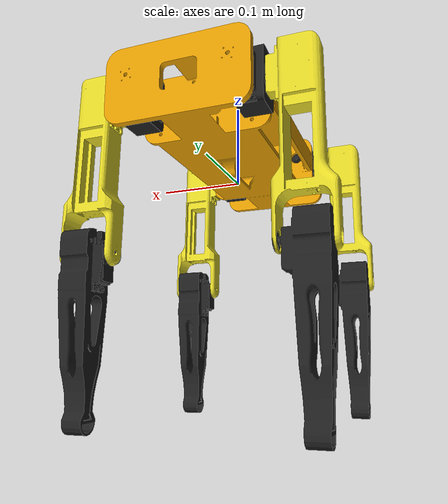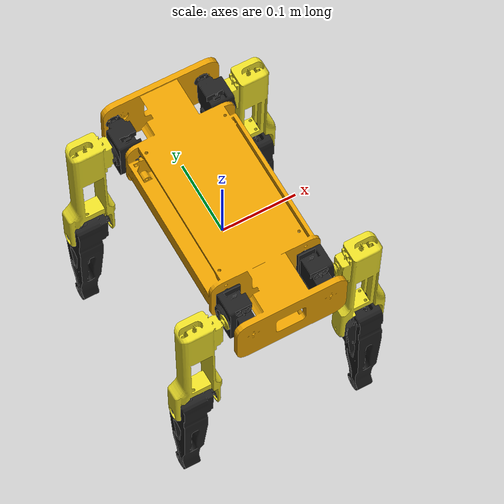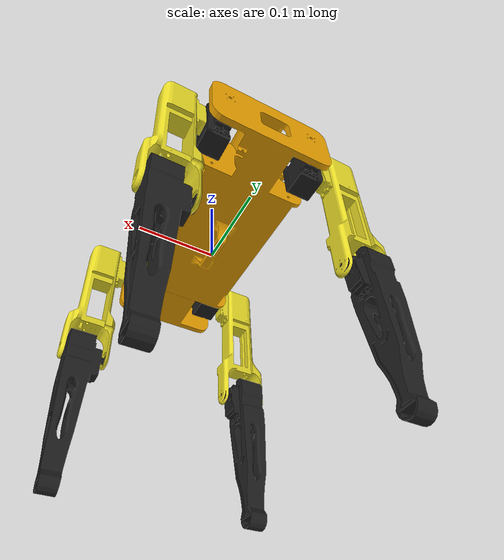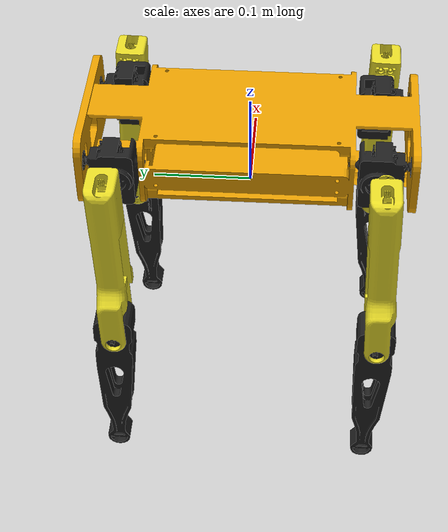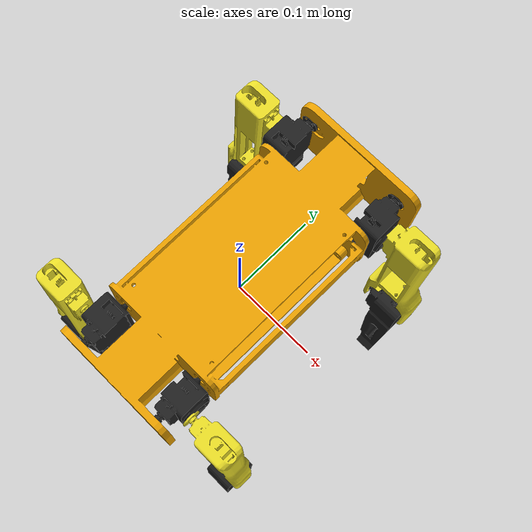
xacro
<?xml version="1.0"?>
<robot xmlns:xacro="http://www.ros.org/wiki/xacro">

  <!-- Base Link -->
  <link name="base_link">
    <inertial>
      <origin xyz="0.0339791631590955 0.00380847068418536 0.000887471069570558" rpy="0 0 0" />
      <mass value="0.640355588852556" />
      <inertia
        ixx="0.00190592102320622"
        ixy="-8.550078354135E-07"
        ixz="-1.1472674834457E-07"
        iyy="0.00102167555137532"
        iyz="-4.05723251345755E-06"
        izz="0.00137688759367021" />
    </inertial>

    <visual>
      <origin xyz="0 0 0.09" rpy="0 1.5708 0" />
      <geometry>
        <mesh filename="package://qu_description/meshes/base_link.stl" />
      </geometry>
    </visual>

    <collision>
      <origin xyz="0 0 0.09" rpy="0 1.5708 0" />
      <geometry>
        <mesh filename="package://qu_description/meshes/base_link.stl" />
      </geometry>
    </collision>
  </link>

  <!-- ========== FRONT RIGHT LEG ========== -->

  <!-- Hip Link FR -->
  <link name="hip_front_right">
    <inertial>
      <origin xyz="-0.0263049634741928 -0.00328314985238911 0.0104147139362361" rpy="0 0 0" />
      <mass value="0.0651782389959226" />
      <inertia
        ixx="2.05907584865794E-05"
        ixy="5.41740464590389E-07"
        ixz="3.22479705749544E-07"
        iyy="2.47921298483818E-05"
        iyz="-4.84168087573281E-07"
        izz="1.17472982428733E-05" />
    </inertial>

    <visual>
      <origin xyz="0.04 0.021 0.017" rpy="3.14 0 1.57" />
      <geometry>
        <mesh filename="package://qu_description/meshes/head_front_forward_right.stl" />
      </geometry>
      <material name="black"/>
    </visual>

    <collision>
      <origin xyz="0.04 0.021 0.017" rpy="3.14 0 1.57" />
      <geometry>
        <mesh filename="package://qu_description/meshes/head_front_forward_right.stl" />
      </geometry>
    </collision>
  </link>

  <!-- Hip Joint FR -->
  <joint name="hip_front_right" type="revolute">
    <origin xyz="-0.1 0.135 0.05" rpy="0 0 0"/>
    <parent link="base_link"/>
    <child link="hip_front_right"/>
    <axis xyz="0 -1 0"/>
    <limit lower="-1.57" upper="1.57" effort="10.0" velocity="6"/>
    <dynamics friction="0.1" damping="0.01"/>
  </joint>

  <!-- Upper Leg Link FR -->
  <link name="upper_leg_front_right">
    <inertial>
      <origin xyz="-0.0293472325462129 -0.0326544446067611 -0.0420830734856089" rpy="0 0 0" />
      <mass value="0.137291251136162" />
      <inertia
        ixx="0.000241478808718855"
        ixy="-3.45049517361544E-06"
        ixz="-0.000147136869197302"
        iyy="0.00033404045364379"
        iyz="-4.93959255904915E-06"
        izz="0.000127320779893877" />
    </inertial>

    <visual>
      <origin xyz="0.053 -0.0009 0.013" rpy="0.0 -0.62 -1.57" />
      <geometry>
        <mesh filename="package://qu_description/meshes/upper_leg3.stl" />
      </geometry>
      <material name="yellow"/>
    </visual>

    <collision>
      <origin xyz="0.053 -0.0009 0.013" rpy="0.0 -0.62 -1.57" />
      <geometry>
        <mesh filename="package://qu_description/meshes/upper_leg3.stl" />
      </geometry>
    </collision>
  </link>

  <!-- Upper Leg Joint FR -->
  <joint name="upper_leg_front_right" type="revolute">
    <origin xyz="-0.03 0.0 0.0" rpy="0 0 0"/>
    <parent link="hip_front_right"/>
    <child link="upper_leg_front_right"/>
    <axis xyz="-1 0 0"/>
    <limit lower="-1.57" upper="1.57" effort="10.0" velocity="6"/>
    <dynamics friction="0.1" damping="0.01"/>
  </joint>

  <!-- Lower Leg Link FR -->
  <link name="lower_leg_front_right">
    <inertial>
      <origin xyz="0.040381855621984 -0.029177389785492 -0.0233051878392252" rpy="0 0 0" />
      <mass value="0.146291724346205" />
      <inertia
        ixx="0.000116692178771142"
        ixy="-4.10507263575127E-06"
        ixz="0.000148316424066739"
        iyy="0.000369863294472716"
        iyz="2.38120345640091E-06"
        izz="0.000281214355888445" />
    </inertial>

    <visual>
      <origin xyz="0.04 -0.0009 -0.02" rpy="0 1.07 -1.57" />
      <geometry>
        <mesh filename="package://qu_description/meshes/lower_leg1.stl" />
      </geometry>
      <material name="black"/>
    </visual>

    <collision>
      <origin xyz="0.04 -0.0009 -0.02" rpy="0 1.07 -1.57" />
      <geometry>
        <mesh filename="package://qu_description/meshes/lower_leg1.stl" />
      </geometry>
    </collision>
  </link>

  <!-- Lower Leg Joint FR -->
  <joint name="lower_leg_front_right" type="revolute">
    <origin xyz="0.0 0.0 -0.14" rpy="0 0 0" />
    <parent link="upper_leg_front_right" />
    <child link="lower_leg_front_right" />
    <axis xyz="-1 0 0" />
    <limit lower="-1.57" upper="1.57" effort="10.0" velocity="6"/>
    <dynamics friction="0.1" damping="0.01"/>
  </joint>

  <!-- ========== FRONT LEFT LEG ========== -->

  <!-- Hip Link FL -->
  <link name="hip_front_left">
    <inertial>
      <origin xyz="-0.0263049634741928 0.00328314985238911 0.0104147139362361" rpy="0 0 0" />
      <mass value="0.0651782389959226" />
      <inertia
        ixx="2.05907584865794E-05"
        ixy="-5.41740464590389E-07"
        ixz="3.22479705749544E-07"
        iyy="2.47921298483818E-05"
        iyz="4.84168087573281E-07"
        izz="1.17472982428733E-05" />
    </inertial>

    <visual>
      <origin xyz="-0.04 0.021 0.017" rpy="3.14 0 1.57" />
      <geometry>
        <mesh filename="package://qu_description/meshes/head_front_forward_left.stl" />
      </geometry>
      <material name="black"/>
    </visual>

    <collision>
      <origin xyz="-0.04 0.021 0.017" rpy="3.14 0 1.57" />
      <geometry>
        <mesh filename="package://qu_description/meshes/head_front_forward_left.stl" />
      </geometry>
    </collision>
  </link>

  <!-- Hip Joint FL -->
  <joint name="hip_front_left" type="revolute">
    <origin xyz="0.1 0.135 0.05" rpy="0 0 0"/>
    <parent link="base_link"/>
    <child link="hip_front_left"/>
    <axis xyz="0 -1 0"/>
    <limit lower="-1.57" upper="1.57" effort="10.0" velocity="6"/>
    <dynamics friction="0.1" damping="0.01"/>
  </joint>

  <!-- Upper Leg Link FL -->
  <link name="upper_leg_front_left">
    <inertial>
      <origin xyz="-0.0293472325462129 -0.0326544446067611 -0.0420830734856089" rpy="0 0 0" />
      <mass value="0.137291251136162" />
      <inertia
        ixx="0.000241478808718855"
        ixy="-3.45049517361544E-06"
        ixz="-0.000147136869197302"
        iyy="0.00033404045364379"
        iyz="-4.93959255904915E-06"
        izz="0.000127320779893877" />
    </inertial>

    <visual>
      <origin xyz="-0.053 -0.0009 0.013" rpy="0.0 -0.62 1.57" />
      <geometry>
        <mesh filename="package://qu_description/meshes/upper_leg3.stl" />
      </geometry>
      <material name="yellow"/>
    </visual>

    <collision>
      <origin xyz="-0.053 -0.0009 0.013" rpy="0.0 -0.62 1.57" />
      <geometry>
        <mesh filename="package://qu_description/meshes/upper_leg3.stl" />
      </geometry>
    </collision>
  </link>

  <!-- Upper Leg Joint FL -->
  <joint name="upper_leg_front_left" type="revolute">
    <origin xyz="0.03 0.0 0.0" rpy="0 0 0"/>
    <parent link="hip_front_left"/>
    <child link="upper_leg_front_left"/>
    <axis xyz="-1 0 0"/>
    <limit lower="-1.57" upper="1.57" effort="10.0" velocity="6"/>
    <dynamics friction="0.1" damping="0.01"/>
  </joint>

  <!-- Lower Leg Link FL -->
  <link name="lower_leg_front_left">
    <inertial>
      <origin xyz="0.040381855621984 -0.029177389785492 -0.0233051878392252" rpy="0 0 0" />
      <mass value="0.146291724346205" />
      <inertia
        ixx="0.000116692178771142"
        ixy="-4.10507263575127E-06"
        ixz="0.000148316424066739"
        iyy="0.000369863294472716"
        iyz="2.38120345640091E-06"
        izz="0.000281214355888445" />
    </inertial>

    <visual>
      <origin xyz="-0.04 -0.0009 -0.02" rpy="0 1.07 1.57" />
      <geometry>
        <mesh filename="package://qu_description/meshes/lower_leg1.stl" />
      </geometry>
      <material name="black"/>
    </visual>

    <collision>
      <origin xyz="-0.04 -0.0009 -0.02" rpy="0 1.07 1.57" />
      <geometry>
        <mesh filename="package://qu_description/meshes/lower_leg1.stl" />
      </geometry>
    </collision>
  </link>

  <!-- Lower Leg Joint FL -->
  <joint name="lower_leg_front_left" type="revolute">
    <origin xyz="0.0 0.0 -0.14" rpy="0 0 0" />
    <parent link="upper_leg_front_left" />
    <child link="lower_leg_front_left" />
    <axis xyz="-1 0 0" />
    <limit lower="-1.57" upper="1.57" effort="10.0" velocity="6"/>
    <dynamics friction="0.1" damping="0.01"/>
  </joint>

  <!-- ========== BACK RIGHT LEG ========== -->

  <!-- Hip Link BR -->
  <link name="hip_back_right">
    <inertial>
      <origin xyz="0.0263049634741928 0.00328314985238911 0.0104147139362361" rpy="0 0 0" />
      <mass value="0.0651782389959226" />
      <inertia
        ixx="2.05907584865794E-05"
        ixy="5.41740464590389E-07"
        ixz="-3.22479705749544E-07"
        iyy="2.47921298483818E-05"
        iyz="4.84168087573281E-07"
        izz="1.17472982428733E-05" />
    </inertial>

    <visual>
      <origin xyz="-0.049 -0.021 0.017" rpy="3.14 0 1.57" />
      <geometry>
        <mesh filename="package://qu_description/meshes/head_back_left.stl" />
      </geometry>
      <material name="black"/>
    </visual>

    <collision>
      <origin xyz="-0.049 -0.021 0.017" rpy="3.14 0 1.57" />
      <geometry>
        <mesh filename="package://qu_description/meshes/head_back_left.stl" />
      </geometry>
    </collision>
  </link>

  <!-- Hip Joint BR -->
  <joint name="hip_back_right" type="revolute">
    <origin xyz="0.1 -0.135 0.05" rpy="0 0 0"/>
    <parent link="base_link"/>
    <child link="hip_back_right"/>
    <axis xyz="0 -1 0"/>
    <limit lower="-1.57" upper="1.57" effort="10.0" velocity="6"/>
    <dynamics friction="0.1" damping="0.01"/>
  </joint>

  <!-- Upper Leg Link BR -->
  <link name="upper_leg_back_right">
    <inertial>
      <origin xyz="-0.0293472325462129 -0.0326544446067611 -0.0420830734856089" rpy="0 0 0" />
      <mass value="0.137291251136162" />
      <inertia
        ixx="0.000241478808718855"
        ixy="-3.45049517361544E-06"
        ixz="-0.000147136869197302"
        iyy="0.00033404045364379"
        iyz="-4.93959255904915E-06"
        izz="0.000127320779893877" />
    </inertial>

    <visual>
      <origin xyz="-0.053 -0.0009 0.013" rpy="0.0 -0.62 1.57" />
      <geometry>
        <mesh filename="package://qu_description/meshes/upper_leg3.stl" />
      </geometry>
      <material name="yellow"/>
    </visual>

    <collision>
      <origin xyz="-0.053 -0.0009 0.013" rpy="0.0 -0.62 1.57" />
      <geometry>
        <mesh filename="package://qu_description/meshes/upper_leg3.stl" />
      </geometry>
    </collision>
  </link>

  <!-- Upper Leg Joint BR -->
  <joint name="upper_leg_back_right" type="revolute">
    <origin xyz="0.03 0.0 0.0" rpy="0 0 0"/>
    <parent link="hip_back_right"/>
    <child link="upper_leg_back_right"/>
    <axis xyz="-1 0 0"/>
    <limit lower="-1.57" upper="1.57" effort="10.0" velocity="6"/>
    <dynamics friction="0.1" damping="0.01"/>
  </joint>

  <!-- Lower Leg Link BR -->
  <link name="lower_leg_back_right">
    <inertial>
      <origin xyz="0.040381855621984 -0.029177389785492 -0.0233051878392252" rpy="0 0 0" />
      <mass value="0.146291724346205" />
      <inertia
        ixx="0.000116692178771142"
        ixy="-4.10507263575127E-06"
        ixz="0.000148316424066739"
        iyy="0.000369863294472716"
        iyz="2.38120345640091E-06"
        izz="0.000281214355888445" />
    </inertial>

    <visual>
      <origin xyz="-0.04 -0.0009 -0.02" rpy="0 1.07 1.57" />
      <geometry>
        <mesh filename="package://qu_description/meshes/lower_leg1.stl" />
      </geometry>
      <material name="black"/>
    </visual>

    <collision>
      <origin xyz="-0.04 -0.0009 -0.02" rpy="0 1.07 1.57" />
      <geometry>
        <mesh filename="package://qu_description/meshes/lower_leg1.stl" />
      </geometry>
    </collision>
  </link>

  <!-- Lower Leg Joint BR -->
  <joint name="lower_leg_back_right" type="revolute">
    <origin xyz="0.0 0.0 -0.14" rpy="0 0 0" />
    <parent link="upper_leg_back_right" />
    <child link="lower_leg_back_right" />
    <axis xyz="-1 0 0" />
    <limit lower="-1.57" upper="1.57" effort="10.0" velocity="6"/>
    <dynamics friction="0.1" damping="0.01"/>
  </joint>

  <!-- ========== BACK LEFT LEG ========== -->

  <!-- Hip Link BL -->
  <link name="hip_back_left">
    <inertial>
      <origin xyz="0.0263049634741928 -0.00328314985238911 0.0104147139362361" rpy="0 0 0" />
      <mass value="0.0651782389959226" />
      <inertia
        ixx="2.05907584865794E-05"
        ixy="-5.41740464590389E-07"
        ixz="-3.22479705749544E-07"
        iyy="2.47921298483818E-05"
        iyz="-4.84168087573281E-07"
        izz="1.17472982428733E-05" />
    </inertial>

    <visual>
      <origin xyz="0.049 -0.021 0.017" rpy="3.14 0 1.57" />
      <geometry>
        <mesh filename="package://qu_description/meshes/head_back_right.stl" />
      </geometry>
      <material name="black"/>
    </visual>

    <collision>
      <origin xyz="0.049 -0.021 0.017" rpy="3.14 0 1.57" />
      <geometry>
        <mesh filename="package://qu_description/meshes/head_back_right.stl" />
      </geometry>
    </collision>
  </link>

  <!-- Hip Joint BL -->
  <joint name="hip_back_left" type="revolute">
    <origin xyz="-0.1 -0.135 0.05" rpy="0 0 0"/>
    <parent link="base_link"/>
    <child link="hip_back_left"/>
    <axis xyz="0 -1 0"/>
    <limit lower="-1.57" upper="1.57" effort="10.0" velocity="6"/>
    <dynamics friction="0.1" damping="0.01"/>
  </joint>

  <!-- Upper Leg Link BL -->
  <link name="upper_leg_back_left">
    <inertial>
      <origin xyz="-0.0293472325462129 -0.0326544446067611 -0.0420830734856089" rpy="0 0 0" />
      <mass value="0.137291251136162" />
      <inertia
        ixx="0.000241478808718855"
        ixy="-3.45049517361544E-06"
        ixz="-0.000147136869197302"
        iyy="0.00033404045364379"
        iyz="-4.93959255904915E-06"
        izz="0.000127320779893877" />
    </inertial>

    <visual>
      <origin xyz="0.053 -0.0009 0.013" rpy="0.0 -0.62 -1.57" />
      <geometry>
        <mesh filename="package://qu_description/meshes/upper_leg3.stl" />
      </geometry>
      <material name="yellow"/>
    </visual>

    <collision>
      <origin xyz="0.053 -0.0009 0.013" rpy="0.0 -0.62 -1.57" />
      <geometry>
        <mesh filename="package://qu_description/meshes/upper_leg3.stl" />
      </geometry>
    </collision>
  </link>

  <!-- Upper Leg Joint BL -->
  <joint name="upper_leg_back_left" type="revolute">
    <origin xyz="-0.03 0.0 0.0" rpy="0 0 0"/>
    <parent link="hip_back_left"/>
    <child link="upper_leg_back_left"/>
    <axis xyz="-1 0 0"/>
    <limit lower="-1.57" upper="1.57" effort="10.0" velocity="6"/>
    <dynamics friction="0.1" damping="0.01"/>
  </joint>

  <!-- Lower Leg Link BL -->
  <link name="lower_leg_back_left">
    <inertial>
      <origin xyz="0.040381855621984 -0.029177389785492 -0.0233051878392252" rpy="0 0 0" />
      <mass value="0.146291724346205" />
      <inertia
        ixx="0.000116692178771142"
        ixy="-4.10507263575127E-06"
        ixz="0.000148316424066739"
        iyy="0.000369863294472716"
        iyz="2.38120345640091E-06"
        izz="0.000281214355888445" />
    </inertial>

    <visual>
      <origin xyz="0.04 -0.0009 -0.02" rpy="0 1.07 -1.57" />
      <geometry>
        <mesh filename="package://qu_description/meshes/lower_leg1.stl" />
      </geometry>
      <material name="black"/>
    </visual>

    <collision>
      <origin xyz="0.04 -0.0009 -0.02" rpy="0 1.07 -1.57" />
      <geometry>
        <mesh filename="package://qu_description/meshes/lower_leg1.stl" />
      </geometry>
    </collision>
  </link>

  <!-- Lower Leg Joint BL -->
  <joint name="lower_leg_back_left" type="revolute">
    <origin xyz="0.0 0.0 -0.14" rpy="0 0 0" />
    <parent link="upper_leg_back_left" />
    <child link="lower_leg_back_left" />
    <axis xyz="-1 0 0" />
    <limit lower="-1.57" upper="1.57" effort="10.0" velocity="6"/>
    <dynamics friction="0.1" damping="0.01"/>
  </joint>

</robot>
